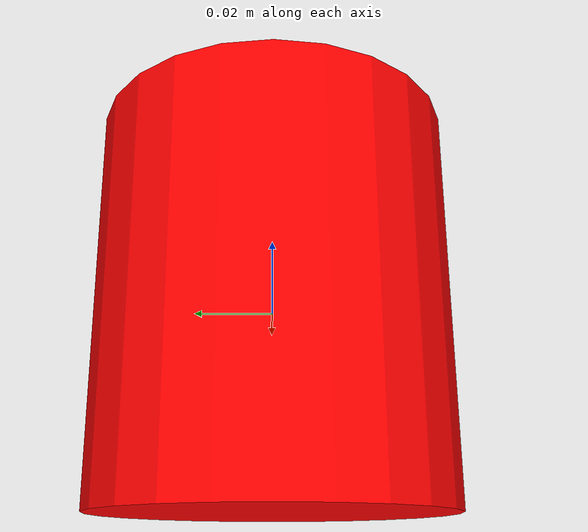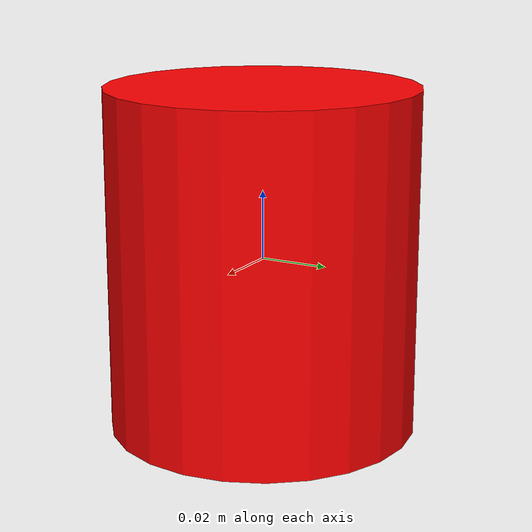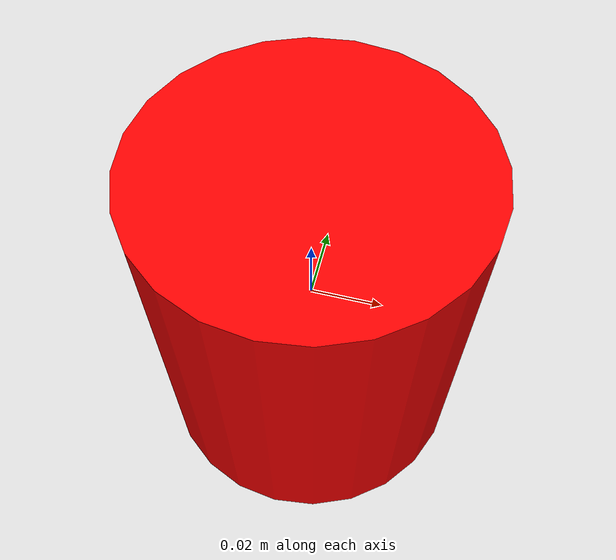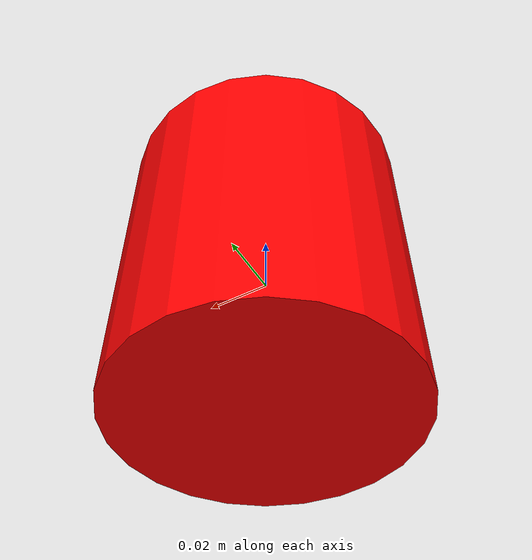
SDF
<?xml version='1.0'?>
<sdf version="1.5">
  <model name="my_cylinder">
    <allow_auto_disable>false</allow_auto_disable>
    <pose>0.0 0.0 0.0 0.0 0.0 0.0</pose>
    <static>false</static>
    <link name="link">
      <inertial>
        <mass>0.376</mass>
        <inertia>
          <ixx>0.0833333 * 0.376 * (3 * 0.045 * 0.045 + 0.1 * 0.1)</ixx>
          <ixy>0.0</ixy>
          <ixz>0.0</ixz>
          <iyy>0.0833333 * 0.376 * (3 * 0.045 * 0.045 + 0.1 * 0.1)</iyy>
          <iyz>0.0</iyz>
          <izz>0.5 * 0.376 * 0.1 * 0.1 </izz>
        </inertia>
      </inertial>

      <visual name="visual">
        <geometry>
          <cylinder>
            <length>0.1</length>
            <radius>0.045</radius>
          </cylinder>
        </geometry>
        <material>
          <diffuse>1 0 0 1</diffuse>
        </material>
      </visual>
      <collision name="collision">
        <geometry>
          <cylinder>
            <length>0.1</length>
            <radius>0.045</radius>
          </cylinder>
        </geometry>
        <surface>
          <bounce>
            <restitution_coefficient>1</restitution_coefficient>
            <threshold>0</threshold>
          </bounce>
          <friction>
            <ode>
              <mu>0.2250</mu>
              <mu2>1</mu2>
            </ode>
            <torsional>
              <ode>
                <slip>1</slip>
              </ode>
            </torsional>
          </friction>
          <contact>
            <collide_bitmask>0x01</collide_bitmask>
            <ode>
              <max_vel>10000</max_vel>
              <kp>100000000000</kp>
              <kd>0</kd>
            </ode>
          </contact>
        </surface>
      </collision>

      <sensor name='my_contact' type='contact'>
        <contact>
          <collision>collision</collision>
        </contact>
      </sensor>
    </link>
  </model>
</sdf>
